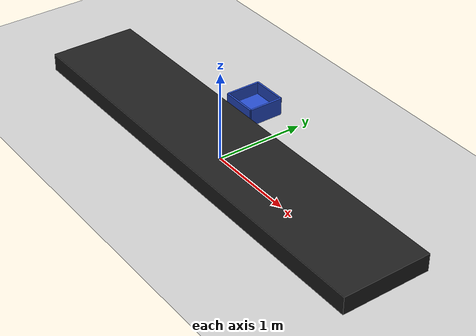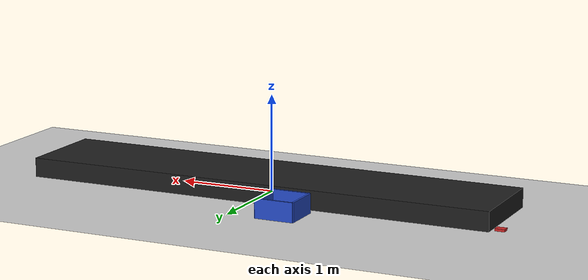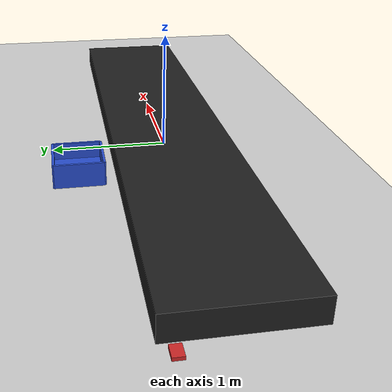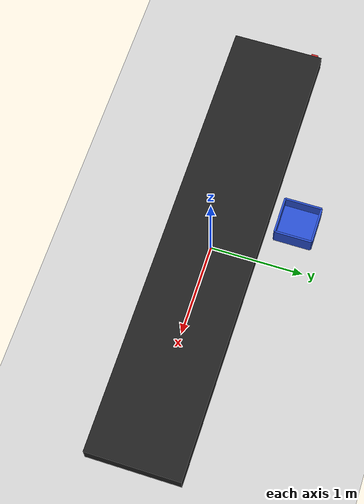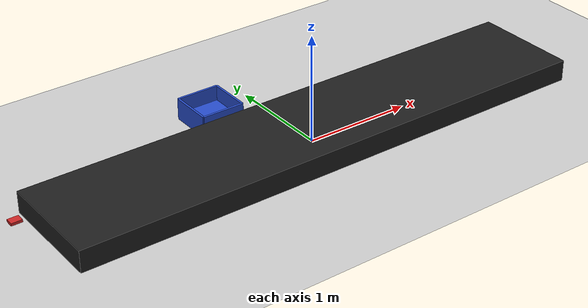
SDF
<sdf version="1.7">
 <world name="default">
  <light name="sun" type="directional">
   <pose>0 0 10 0 -0 0</pose>
   <diffuse>0.8 0.8 0.8 1</diffuse>
   <specular>0.2 0.2 0.2 1</specular>
   <attenuation>
    <range>1000</range>
    <constant>0.9</constant>
    <linear>0.01</linear>
    <quadratic>0.001</quadratic>
   </attenuation>
   <direction>-0.5 0.1 -0.9</direction>
   <spot><inner_angle>0</inner_angle><outer_angle>0</outer_angle><falloff>0</falloff></spot>
  </light>
  <model name="ground_plane">
   <static>1</static>
   <link name="link">
    <collision name="collision">
     <geometry><plane><normal>0 0 1</normal><size>100 100</size></plane></geometry>
     <surface>
      <contact><collide_bitmask>65535</collide_bitmask></contact>
      <friction><ode><mu>100</mu><mu2>50</mu2></ode></friction>
     </surface>
    </collision>
    <visual name="visual">
     <cast_shadows>0</cast_shadows>
     <geometry><plane><normal>0 0 1</normal><size>100 100</size></plane></geometry>
     <material>
      <script><uri>file://media/materials/scripts/gazebo.material</uri><name>Gazebo/Grey</name></script>
     </material>
    </visual>
   </link>
  </model>
  <gravity>0 0 -9.8</gravity>
  <magnetic_field>6e-06 2.3e-05 -4.2e-05</magnetic_field>
  <atmosphere type="adiabatic"/>
  <physics type="ode">
   <max_step_size>0.001</max_step_size>
   <real_time_factor>1</real_time_factor>
   <real_time_update_rate>1000</real_time_update_rate>
  </physics>
  <scene><ambient>0.4 0.4 0.4 1</ambient><background>0.7 0.7 0.7 1</background><shadows>1</shadows></scene>
  <spherical_coordinates>
   <surface_model>EARTH_WGS84</surface_model>
   <latitude_deg>0</latitude_deg>
   <longitude_deg>0</longitude_deg>
   <elevation>0</elevation>
   <heading_deg>0</heading_deg>
  </spherical_coordinates>
  <model name="conveyor_belt">
   <joint name="joint_fix" type="fixed">
    <pose relative_to="__model__">0 0 0 0 -0 0</pose>
    <parent>world</parent>
    <child>base_link</child>
   </joint>
   <link name="base_link">
    <pose relative_to="joint_fix">0 0 0 0 -0 0</pose>
    <inertial>
     <pose>0 0 0.1 0 -0 0</pose>
     <mass>1</mass>
     <inertia><ixx>1</ixx><ixy>0</ixy><ixz>0</ixz><iyy>1</iyy><iyz>0</iyz><izz>1</izz></inertia>
    </inertial>
    <collision name="base_link_collision">
     <pose>0 0 0.1 0 -0 0</pose>
     <geometry><box><size>5 1 0.2</size></box></geometry>
     <surface><friction><ode><mu>0</mu><mu2>0</mu2></ode></friction></surface>
    </collision>
    <visual name="base_link_visual">
     <pose>0 0 0.1 0 -0 0</pose>
     <geometry><box><size>5 1 0.2</size></box></geometry>
     <material>
      <script><name>Gazebo/FlatBlack</name><uri>file://media/materials/scripts/gazebo.material</uri></script>
     </material>
    </visual>
   </link>
  </model>
  <model name="bin">
   <joint name="joint_fix" type="fixed">
    <pose relative_to="__model__">0 0 0 0 -0 0</pose>
    <parent>world</parent>
    <child>bottom</child>
   </joint>
   <link name="bottom">
    <pose relative_to="joint_fix">0 0 0 0 -0 0</pose>
    <inertial>
     <pose>0 0 0.04 0 -0 0</pose>
     <mass>0.25</mass>
     <inertia><ixx>0.0091</ixx><ixy>0</ixy><ixz>0</ixz><iyy>0.0091</iyy><iyz>0</iyz><izz>0.013</izz></inertia>
    </inertial>
    <collision name="bottom_collision">
     <geometry><box><size>0.4 0.4 0.02</size></box></geometry>
     <surface><friction><ode><mu>10</mu><mu2>10</mu2></ode></friction></surface>
    </collision>
    <collision name="bottom_fixed_joint_lump__back_collision_1">
     <pose>0 0.2 0.05 0 -0 0</pose>
     <geometry><box><size>0.4 0.02 0.2</size></box></geometry>
     <surface><friction><ode><mu>10</mu><mu2>10</mu2></ode></friction></surface>
    </collision>
    <collision name="bottom_fixed_joint_lump__front_collision_2">
     <pose>0 -0.2 0.05 0 -0 0</pose>
     <geometry><box><size>0.4 0.02 0.2</size></box></geometry>
     <surface><friction><ode><mu>10</mu><mu2>10</mu2></ode></friction></surface>
    </collision>
    <collision name="bottom_fixed_joint_lump__left_collision_3">
     <pose>-0.2 0 0.05 0 -0 0</pose>
     <geometry><box><size>0.02 0.4 0.2</size></box></geometry>
     <surface><friction><ode><mu>10</mu><mu2>10</mu2></ode></friction></surface>
    </collision>
    <collision name="bottom_fixed_joint_lump__right_collision_4">
     <pose>0.2 0 0.05 0 -0 0</pose>
     <geometry><box><size>0.02 0.4 0.2</size></box></geometry>
     <surface><friction><ode><mu>10</mu><mu2>10</mu2></ode></friction></surface>
    </collision>
    <visual name="bottom_visual">
     <geometry><box><size>0.4 0.4 0.02</size></box></geometry>
     <material>
      <script><name>Gazebo/Blue</name><uri>file://media/materials/scripts/gazebo.material</uri></script>
     </material>
    </visual>
    <visual name="bottom_fixed_joint_lump__back_visual_1">
     <pose>0 0.2 0.05 0 -0 0</pose>
     <geometry><box><size>0.4 0.02 0.2</size></box></geometry>
     <material>
      <script><name>Gazebo/Blue</name><uri>file://media/materials/scripts/gazebo.material</uri></script>
     </material>
    </visual>
    <visual name="bottom_fixed_joint_lump__front_visual_2">
     <pose>0 -0.2 0.05 0 -0 0</pose>
     <geometry><box><size>0.4 0.02 0.2</size></box></geometry>
     <material>
      <script><name>Gazebo/Blue</name><uri>file://media/materials/scripts/gazebo.material</uri></script>
     </material>
    </visual>
    <visual name="bottom_fixed_joint_lump__left_visual_3">
     <pose>-0.2 0 0.05 0 -0 0</pose>
     <geometry><box><size>0.02 0.4 0.2</size></box></geometry>
     <material>
      <script><name>Gazebo/Blue</name><uri>file://media/materials/scripts/gazebo.material</uri></script>
     </material>
    </visual>
    <visual name="bottom_fixed_joint_lump__right_visual_4">
     <pose>0.2 0 0.05 0 -0 0</pose>
     <geometry><box><size>0.02 0.4 0.2</size></box></geometry>
     <material>
      <script><name>Gazebo/Blue</name><uri>file://media/materials/scripts/gazebo.material</uri></script>
     </material>
    </visual>
   </link>
   <pose>-0.5 0.8 0.05 0 -0 0</pose>
  </model>
  <model name="red_blocks_0">
   <link name="base_link">
    <inertial>
     <pose>0 0 0.02 0 -0 0</pose>
     <mass>0.05</mass>
     <inertia><ixx>0.001</ixx><ixy>0</ixy><ixz>0</ixz><iyy>0.001</iyy><iyz>0</iyz><izz>0.001</izz></inertia>
    </inertial>
    <collision name="base_link_collision">
     <pose>0 0 0.02 0 -0 0</pose>
     <geometry><box><size>0.1 0.075 0.025</size></box></geometry>
     <surface><friction><ode><mu>5</mu><mu2>5</mu2></ode></friction></surface>
    </collision>
    <visual name="base_link_visual">
     <pose>0 0 0.02 0 -0 0</pose>
     <geometry><box><size>0.1 0.075 0.025</size></box></geometry>
     <material>
      <script><name>Gazebo/Red</name><uri>file://media/materials/scripts/gazebo.material</uri></script>
     </material>
    </visual>
   </link>
   <pose>-2.58546 0.400261 -0.007501 9e-06 1.5e-05 -0.001625</pose>
  </model>
 </world>
</sdf>
